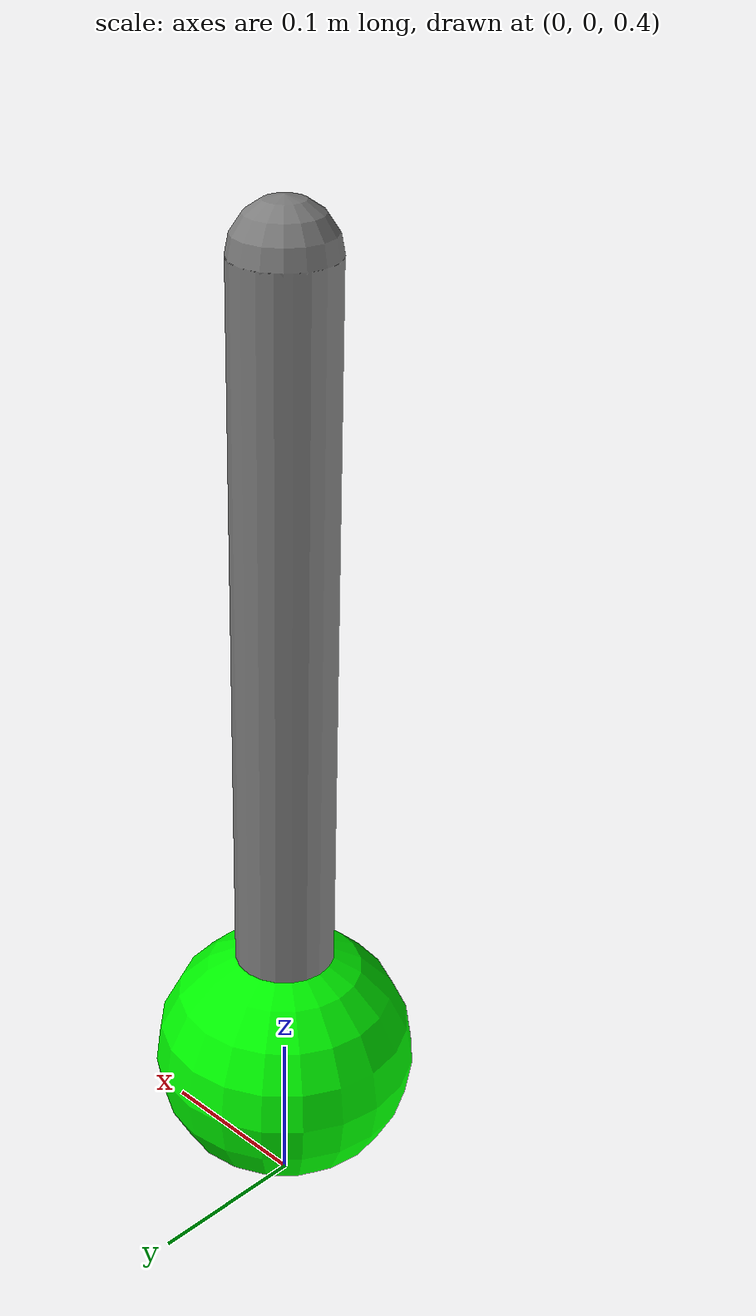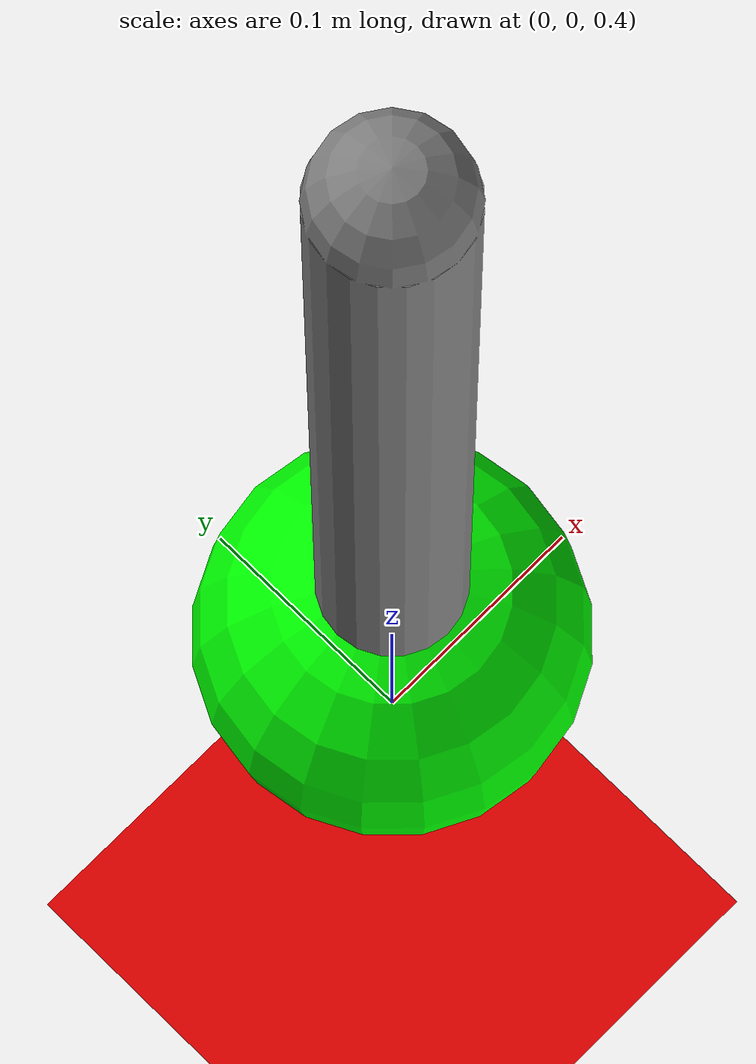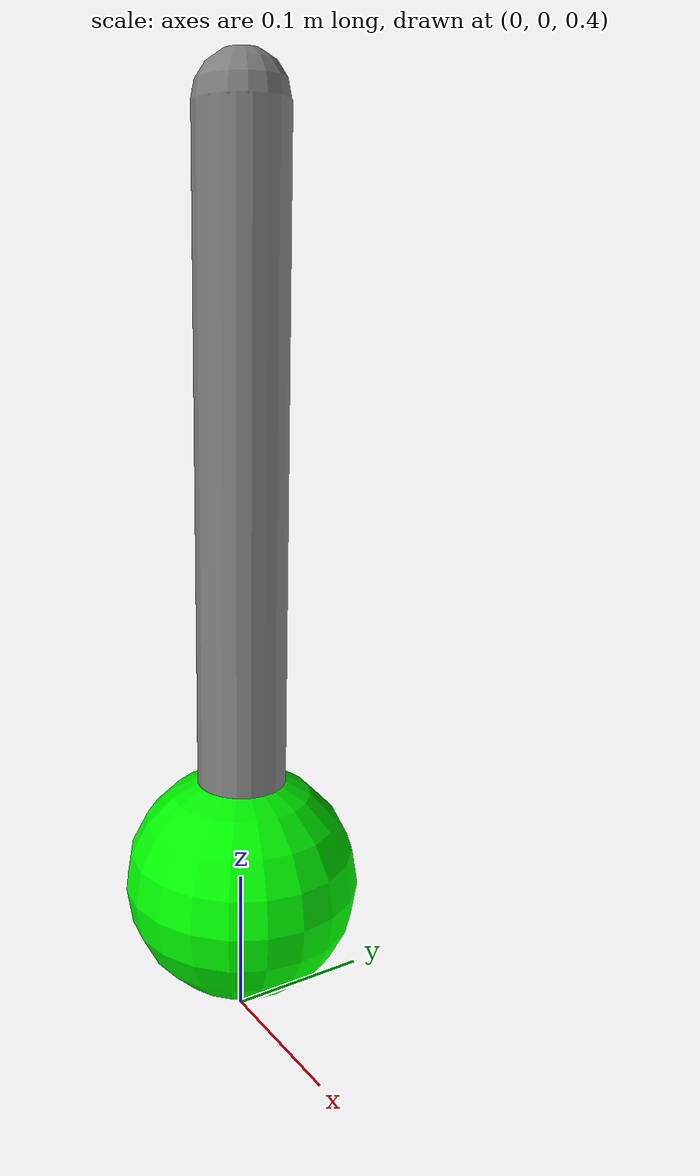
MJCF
<mujoco>
    <option timestep="0.002" gravity="0 0 -9.81"/>

    <worldbody>
        <light pos="0 0 3"/>
        <geom type="plane" size="1 1 0.5" rgba=".9 0 0 1"/>

        <body name="pendulum" pos="0 0 1">
            <joint name="hinge" type="hinge" axis="0 1 0"/>
            <geom type="capsule" size="0.03" fromto="0 0 0 0 0 -0.5" rgba="0.5 0.5 0.5 1"/>
            <geom type="sphere" size="0.08" pos="0 0 -0.5" rgba="0 1 0 1" mass="1"/>

            <!-- 末端 site：红色小球，可视化 + 可挂传感器 -->
            <site name="tip" pos="0 0 -0.5" size="0.04" rgba="1 0 0 1"/>
        </body>
    </worldbody>

    <sensor>
        <!-- 铰链关节角速度 (rad/s) -->
        <jointvel joint="hinge" name="hinge_vel"/>

        <!-- site 上挂传感器：末端的空间位置和速度 -->
        <framepos    objtype="site" objname="tip" name="tip_pos"/>
        <framelinvel objtype="site" objname="tip" name="tip_vel"/>
    </sensor>
</mujoco>
